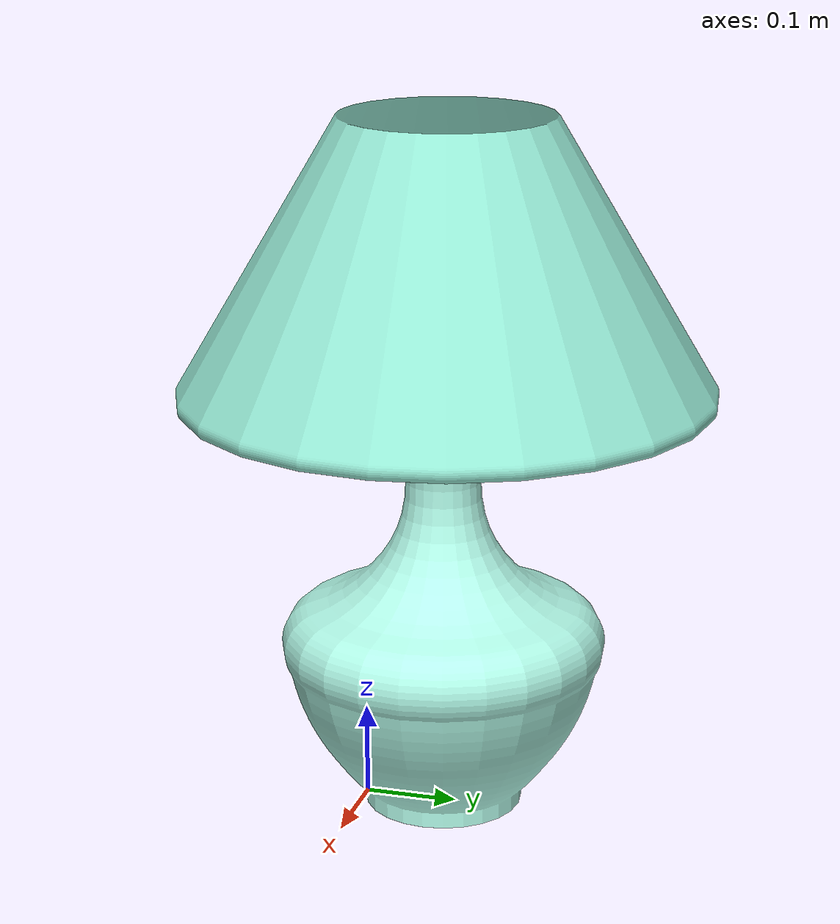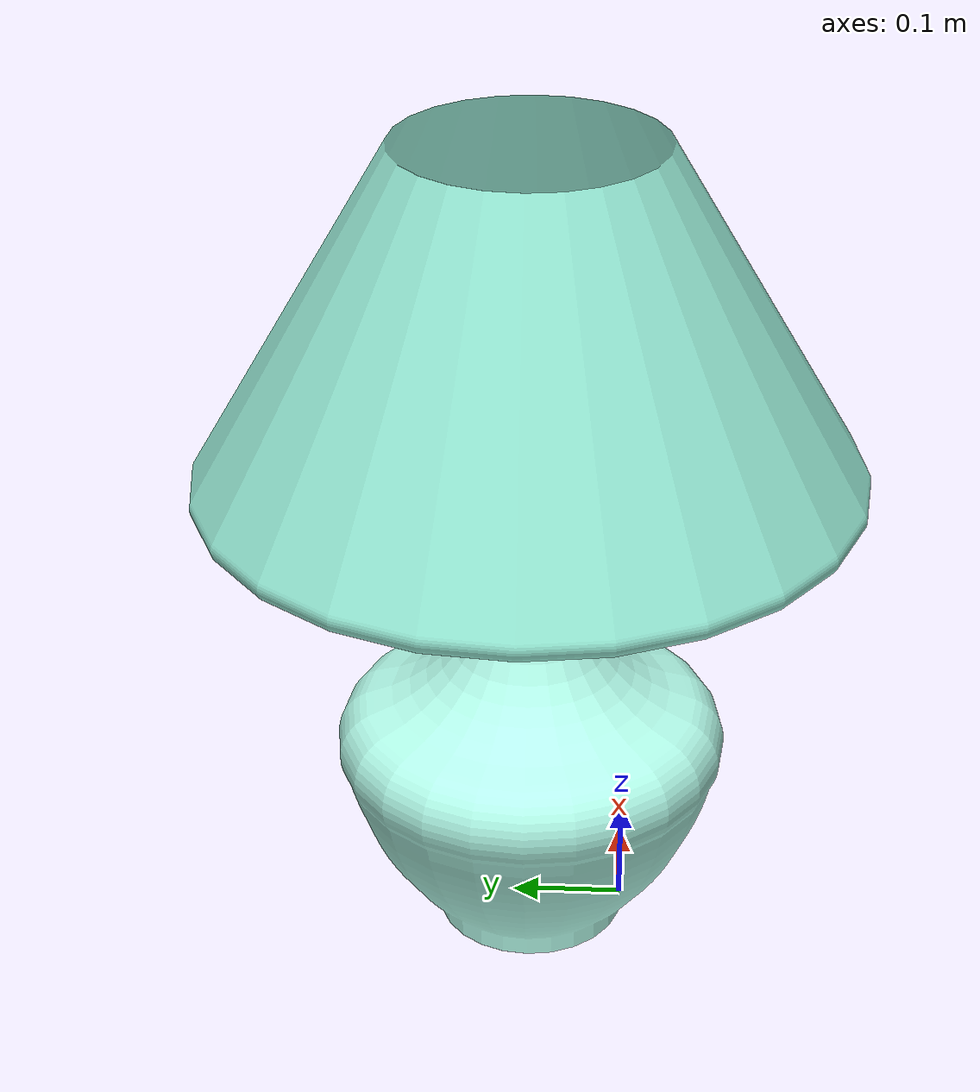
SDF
<?xml version='1.0'?>
<sdf version='1.6'>
  <model name='lamp_table_small'>
    <link name='link_20'>
      <pose frame=''>0 0 0 0 -0 0</pose>
     <visual name='visual'>
        <pose frame=''>0 0 0 0 -0 0</pose>
        <geometry>
          <mesh>
            <uri>model://lamp_table_small/meshes/lamp_base.dae</uri>
            <scale>1 1 1</scale>
          </mesh>
        </geometry>
        <material>
          <lighting>1</lighting>
             <ambient>0.6980 0.9843 0.9137 1</ambient>
          <diffuse>0.6980 0.9843 0.9137 1</diffuse>
          <specular>0.01 0.01 0.01 1</specular>
          <emissive>0 0 0 1</emissive>
          <shader type='vertex'>
            <normal_map>__default__</normal_map>
          </shader>
        </material>
        <cast_shadows>1</cast_shadows>
        <transparency>0</transparency>
      </visual>
      <collision name='collision'>
        <laser_retro>0</laser_retro>
        <max_contacts>10</max_contacts>
        <pose frame=''>0 0 0 0 -0 0</pose>
        <geometry>
          <mesh>
            <uri>model://lamp_table_small/meshes/lamp_base.dae</uri>
            <scale>1 1 1</scale>
          </mesh>
        </geometry>

      </collision>
    </link>
    <link name='link_21'>
      <pose frame=''>0 0 0 0 -0 0</pose>

      <visual name='visual'>
        <pose frame=''>0 0 0 0 -0 0</pose>
        <geometry>
          <mesh>
            <uri>model://lamp_table_small/meshes/lamp_head.dae</uri>
            <scale>1 1 1</scale>
          </mesh>
        </geometry>
        <material>
          <lighting>1</lighting>
          <ambient>0.5960 0.9254 0.8431 1</ambient>
          <diffuse>0.5960 0.9254 0.8431 1</diffuse>
          <specular>0.01 0.01 0.01 1</specular>
          <emissive>0 0 0 1</emissive>
          <shader type='vertex'>
            <normal_map>__default__</normal_map>
          </shader>
        </material>
        <cast_shadows>1</cast_shadows>
        <transparency>0</transparency>
      </visual>
      <collision name='collision'>
        <laser_retro>0</laser_retro>
        <max_contacts>10</max_contacts>
        <pose frame=''>0 0 0 0 -0 0</pose>
        <geometry>
          <mesh>
            <uri>model://lamp_table_small/meshes/lamp_head.dae</uri>
            <scale>1 1 1</scale>
          </mesh>
        </geometry>

      </collision>
    </link>
    <static>1</static>
    <allow_auto_disable>1</allow_auto_disable>
  </model>
</sdf>
